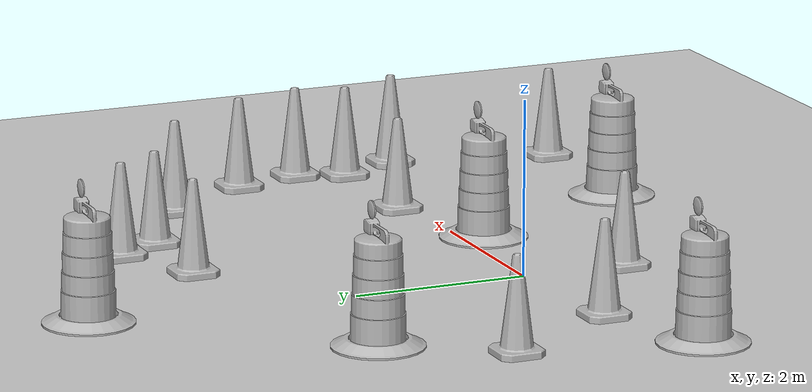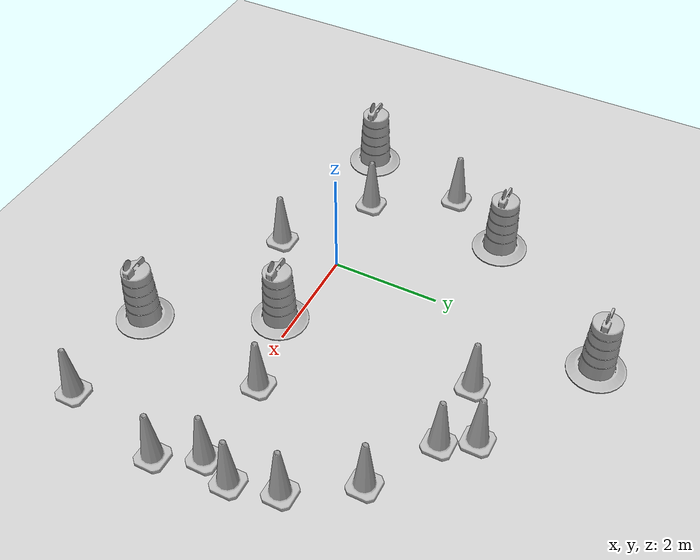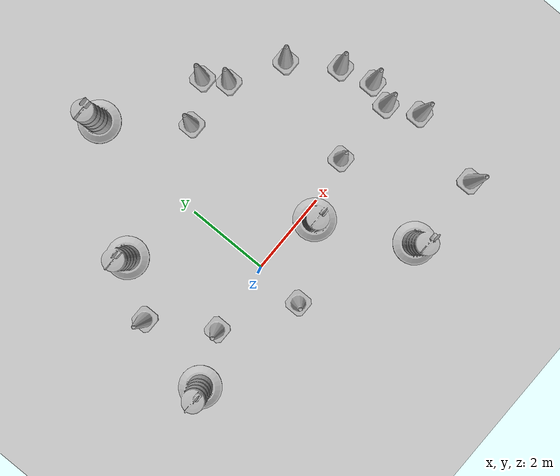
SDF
<sdf version="1.7">
 <world name="default">
  <light name="sun" type="directional">
   <pose>0 0 10 0 -0 0</pose>
   <diffuse>0.8 0.8 0.8 1</diffuse>
   <specular>0.2 0.2 0.2 1</specular>
   <attenuation>
    <range>1000</range>
    <constant>0.9</constant>
    <linear>0.01</linear>
    <quadratic>0.001</quadratic>
   </attenuation>
   <direction>-0.5 0.1 -0.9</direction>
   <spot><inner_angle>0</inner_angle><outer_angle>0</outer_angle><falloff>0</falloff></spot>
  </light>
  <model name="ground_plane">
   <static>1</static>
   <link name="link">
    <collision name="collision">
     <geometry><plane><normal>0 0 1</normal><size>100 100</size></plane></geometry>
     <surface><friction><ode><mu>100</mu><mu2>50</mu2></ode></friction></surface>
    </collision>
    <visual name="visual">
     <cast_shadows>0</cast_shadows>
     <geometry><plane><normal>0 0 1</normal><size>100 100</size></plane></geometry>
     <material>
      <script><uri>file://media/materials/scripts/gazebo.material</uri><name>Gazebo/Grey</name></script>
     </material>
    </visual>
   </link>
  </model>
  <gravity>0 0 -9.8</gravity>
  <magnetic_field>6e-06 2.3e-05 -4.2e-05</magnetic_field>
  <atmosphere type="adiabatic"/>
  <physics type="ode">
   <max_step_size>0.001</max_step_size>
   <real_time_factor>1</real_time_factor>
   <real_time_update_rate>1000</real_time_update_rate>
  </physics>
  <scene><ambient>0.4 0.4 0.4 1</ambient><background>0.7 0.7 0.7 1</background><shadows>1</shadows></scene>
  <audio><device>default</device></audio>
  <spherical_coordinates>
   <surface_model>EARTH_WGS84</surface_model>
   <latitude_deg>0</latitude_deg>
   <longitude_deg>0</longitude_deg>
   <elevation>0</elevation>
   <heading_deg>0</heading_deg>
  </spherical_coordinates>
  <model name="Construction Barrel">
   <link name="link">
    <inertial>
     <pose>0 0 0.4 0 -0 0</pose>
     <mass>500</mass>
     <inertia><ixx>51.2096</ixx><iyy>51.2096</iyy><izz>25</izz><ixy>0</ixy><ixz>0</ixz><iyz>0</iyz></inertia>
    </inertial>
    <collision name="collision">
     <geometry><mesh><uri>model://construction_barrel/meshes/construction_barrel.dae</uri></mesh></geometry>
    </collision>
    <visual name="visual">
     <geometry><mesh><uri>model://construction_barrel/meshes/construction_barrel.dae</uri></mesh></geometry>
    </visual>
   </link>
   <pose>-1.8027 2.50769 -3e-06 -0 -1.2e-05 -2.5e-05</pose>
  </model>
  <model name="Construction Barrel_0">
   <link name="link">
    <inertial>
     <pose>0 0 0.4 0 -0 0</pose>
     <mass>500</mass>
     <inertia><ixx>51.2096</ixx><iyy>51.2096</iyy><izz>25</izz><ixy>0</ixy><ixz>0</ixz><iyz>0</iyz></inertia>
    </inertial>
    <collision name="collision">
     <geometry><mesh><uri>model://construction_barrel/meshes/construction_barrel.dae</uri></mesh></geometry>
    </collision>
    <visual name="visual">
     <geometry><mesh><uri>model://construction_barrel/meshes/construction_barrel.dae</uri></mesh></geometry>
    </visual>
   </link>
   <pose>2.69583 -2.3754 -3e-06 -0 -1.2e-05 -2.6e-05</pose>
  </model>
  <model name="Construction Cone">
   <link name="link">
    <collision name="collision">
     <geometry>
      <mesh><scale>10 10 10</scale><uri>model://construction_cone/meshes/construction_cone.dae</uri></mesh>
     </geometry>
    </collision>
    <visual name="visual">
     <geometry>
      <mesh><scale>10 10 10</scale><uri>model://construction_cone/meshes/construction_cone.dae</uri></mesh>
     </geometry>
    </visual>
    <inertial>
     <inertia><ixx>1</ixx><ixy>0</ixy><ixz>0</ixz><iyy>1</iyy><iyz>0</iyz><izz>1</izz></inertia>
     <mass>1</mass>
    </inertial>
   </link>
   <pose>5.04948 -0.561381 -0 0 -0 0</pose>
  </model>
  <model name="Construction Cone_0">
   <link name="link">
    <collision name="collision">
     <geometry>
      <mesh><scale>10 10 10</scale><uri>model://construction_cone/meshes/construction_cone.dae</uri></mesh>
     </geometry>
    </collision>
    <visual name="visual">
     <geometry>
      <mesh><scale>10 10 10</scale><uri>model://construction_cone/meshes/construction_cone.dae</uri></mesh>
     </geometry>
    </visual>
    <inertial>
     <inertia><ixx>1</ixx><ixy>0</ixy><ixz>0</ixz><iyy>1</iyy><iyz>0</iyz><izz>1</izz></inertia>
     <mass>1</mass>
    </inertial>
   </link>
   <pose>4.71102 0.17231 0 -0 -0 -0</pose>
  </model>
  <model name="Construction Cone_1">
   <link name="link">
    <collision name="collision">
     <geometry>
      <mesh><scale>10 10 10</scale><uri>model://construction_cone/meshes/construction_cone.dae</uri></mesh>
     </geometry>
    </collision>
    <visual name="visual">
     <geometry>
      <mesh><scale>10 10 10</scale><uri>model://construction_cone/meshes/construction_cone.dae</uri></mesh>
     </geometry>
    </visual>
    <inertial>
     <inertia><ixx>1</ixx><ixy>0</ixy><ixz>0</ixz><iyy>1</iyy><iyz>0</iyz><izz>1</izz></inertia>
     <mass>1</mass>
    </inertial>
   </link>
   <pose>4.91195 0.729709 -0 0 -1e-06 0</pose>
  </model>
  <model name="Construction Cone_2">
   <link name="link">
    <collision name="collision">
     <geometry>
      <mesh><scale>10 10 10</scale><uri>model://construction_cone/meshes/construction_cone.dae</uri></mesh>
     </geometry>
    </collision>
    <visual name="visual">
     <geometry>
      <mesh><scale>10 10 10</scale><uri>model://construction_cone/meshes/construction_cone.dae</uri></mesh>
     </geometry>
    </visual>
    <inertial>
     <inertia><ixx>1</ixx><ixy>0</ixy><ixz>0</ixz><iyy>1</iyy><iyz>0</iyz><izz>1</izz></inertia>
     <mass>1</mass>
    </inertial>
   </link>
   <pose>4.70737 1.52455 -0 0 -0 0</pose>
  </model>
  <model name="Construction Cone_3">
   <link name="link">
    <collision name="collision">
     <geometry>
      <mesh><scale>10 10 10</scale><uri>model://construction_cone/meshes/construction_cone.dae</uri></mesh>
     </geometry>
    </collision>
    <visual name="visual">
     <geometry>
      <mesh><scale>10 10 10</scale><uri>model://construction_cone/meshes/construction_cone.dae</uri></mesh>
     </geometry>
    </visual>
    <inertial>
     <inertia><ixx>1</ixx><ixy>0</ixy><ixz>0</ixz><iyy>1</iyy><iyz>0</iyz><izz>1</izz></inertia>
     <mass>1</mass>
    </inertial>
   </link>
   <pose>2.80647 3.28825 -0 0 -1e-06 0</pose>
  </model>
  <model name="Construction Cone_4">
   <link name="link">
    <collision name="collision">
     <geometry>
      <mesh><scale>10 10 10</scale><uri>model://construction_cone/meshes/construction_cone.dae</uri></mesh>
     </geometry>
    </collision>
    <visual name="visual">
     <geometry>
      <mesh><scale>10 10 10</scale><uri>model://construction_cone/meshes/construction_cone.dae</uri></mesh>
     </geometry>
    </visual>
    <inertial>
     <inertia><ixx>1</ixx><ixy>0</ixy><ixz>0</ixz><iyy>1</iyy><iyz>0</iyz><izz>1</izz></inertia>
     <mass>1</mass>
    </inertial>
   </link>
   <pose>4.00741 2.58993 -0 0 -0 0</pose>
  </model>
  <model name="Construction Cone_5">
   <link name="link">
    <collision name="collision">
     <geometry>
      <mesh><scale>10 10 10</scale><uri>model://construction_cone/meshes/construction_cone.dae</uri></mesh>
     </geometry>
    </collision>
    <visual name="visual">
     <geometry>
      <mesh><scale>10 10 10</scale><uri>model://construction_cone/meshes/construction_cone.dae</uri></mesh>
     </geometry>
    </visual>
    <inertial>
     <inertia><ixx>1</ixx><ixy>0</ixy><ixz>0</ixz><iyy>1</iyy><iyz>0</iyz><izz>1</izz></inertia>
     <mass>1</mass>
    </inertial>
   </link>
   <pose>2.47894 3.80997 -0 0 -1e-06 0</pose>
  </model>
  <model name="Construction Cone_6">
   <link name="link">
    <collision name="collision">
     <geometry>
      <mesh><scale>10 10 10</scale><uri>model://construction_cone/meshes/construction_cone.dae</uri></mesh>
     </geometry>
    </collision>
    <visual name="visual">
     <geometry>
      <mesh><scale>10 10 10</scale><uri>model://construction_cone/meshes/construction_cone.dae</uri></mesh>
     </geometry>
    </visual>
    <inertial>
     <inertia><ixx>1</ixx><ixy>0</ixy><ixz>0</ixz><iyy>1</iyy><iyz>0</iyz><izz>1</izz></inertia>
     <mass>1</mass>
    </inertial>
   </link>
   <pose>1.50798 3.321 -1e-06 1e-06 -2e-06 -0</pose>
  </model>
  <model name="Construction Barrel_1">
   <link name="link">
    <inertial>
     <pose>0 0 0.4 0 -0 0</pose>
     <mass>500</mass>
     <inertia><ixx>51.2096</ixx><iyy>51.2096</iyy><izz>25</izz><ixy>0</ixy><ixz>0</ixz><iyz>0</iyz></inertia>
    </inertial>
    <collision name="collision">
     <geometry><mesh><uri>model://construction_barrel/meshes/construction_barrel.dae</uri></mesh></geometry>
    </collision>
    <visual name="visual">
     <geometry><mesh><uri>model://construction_barrel/meshes/construction_barrel.dae</uri></mesh></geometry>
    </visual>
   </link>
   <pose>1.63546 -0.2529 0 0 0 -1.9e-05</pose>
  </model>
  <model name="Construction Barrel_2">
   <link name="link">
    <inertial>
     <pose>0 0 0.4 0 -0 0</pose>
     <mass>500</mass>
     <inertia><ixx>51.2096</ixx><iyy>51.2096</iyy><izz>25</izz><ixy>0</ixy><ixz>0</ixz><iyz>0</iyz></inertia>
    </inertial>
    <collision name="collision">
     <geometry><mesh><uri>model://construction_barrel/meshes/construction_barrel.dae</uri></mesh></geometry>
    </collision>
    <visual name="visual">
     <geometry><mesh><uri>model://construction_barrel/meshes/construction_barrel.dae</uri></mesh></geometry>
    </visual>
   </link>
   <pose>0.20248 5.01657 -1e-06 4e-06 -2e-06 -2.1e-05</pose>
  </model>
  <model name="Construction Barrel_3">
   <link name="link">
    <inertial>
     <pose>0 0 0.4 0 -0 0</pose>
     <mass>500</mass>
     <inertia><ixx>51.2096</ixx><iyy>51.2096</iyy><izz>25</izz><ixy>0</ixy><ixz>0</ixz><iyz>0</iyz></inertia>
    </inertial>
    <collision name="collision">
     <geometry><mesh><uri>model://construction_barrel/meshes/construction_barrel.dae</uri></mesh></geometry>
    </collision>
    <visual name="visual">
     <geometry><mesh><uri>model://construction_barrel/meshes/construction_barrel.dae</uri></mesh></geometry>
    </visual>
   </link>
   <pose>-3.02722 -0.693707 0 0 0 -1.8e-05</pose>
  </model>
  <model name="Construction Cone_7">
   <link name="link">
    <collision name="collision">
     <geometry>
      <mesh><scale>10 10 10</scale><uri>model://construction_cone/meshes/construction_cone.dae</uri></mesh>
     </geometry>
    </collision>
    <visual name="visual">
     <geometry>
      <mesh><scale>10 10 10</scale><uri>model://construction_cone/meshes/construction_cone.dae</uri></mesh>
     </geometry>
    </visual>
    <inertial>
     <inertia><ixx>1</ixx><ixy>0</ixy><ixz>0</ixz><iyy>1</iyy><iyz>0</iyz><izz>1</izz></inertia>
     <mass>1</mass>
    </inertial>
   </link>
   <pose>-2.63078 1.28533 -1e-06 2e-06 2e-06 0</pose>
  </model>
  <model name="Construction Cone_8">
   <link name="link">
    <collision name="collision">
     <geometry>
      <mesh><scale>10 10 10</scale><uri>model://construction_cone/meshes/construction_cone.dae</uri></mesh>
     </geometry>
    </collision>
    <visual name="visual">
     <geometry>
      <mesh><scale>10 10 10</scale><uri>model://construction_cone/meshes/construction_cone.dae</uri></mesh>
     </geometry>
    </visual>
    <inertial>
     <inertia><ixx>1</ixx><ixy>0</ixy><ixz>0</ixz><iyy>1</iyy><iyz>0</iyz><izz>1</izz></inertia>
     <mass>1</mass>
    </inertial>
   </link>
   <pose>-1.7496 -0.148497 -1e-06 1e-06 -2e-06 -0</pose>
  </model>
  <model name="Construction Cone_10">
   <link name="link">
    <collision name="collision">
     <geometry>
      <mesh><scale>10 10 10</scale><uri>model://construction_cone/meshes/construction_cone.dae</uri></mesh>
     </geometry>
    </collision>
    <visual name="visual">
     <geometry>
      <mesh><scale>10 10 10</scale><uri>model://construction_cone/meshes/construction_cone.dae</uri></mesh>
     </geometry>
    </visual>
    <inertial>
     <inertia><ixx>1</ixx><ixy>0</ixy><ixz>0</ixz><iyy>1</iyy><iyz>0</iyz><izz>1</izz></inertia>
     <mass>1</mass>
    </inertial>
   </link>
   <pose>3.0996 0.180991 -0 0 -1e-06 0</pose>
  </model>
  <model name="Construction Cone_11">
   <link name="link">
    <collision name="collision">
     <geometry>
      <mesh><scale>10 10 10</scale><uri>model://construction_cone/meshes/construction_cone.dae</uri></mesh>
     </geometry>
    </collision>
    <visual name="visual">
     <geometry>
      <mesh><scale>10 10 10</scale><uri>model://construction_cone/meshes/construction_cone.dae</uri></mesh>
     </geometry>
    </visual>
    <inertial>
     <inertia><ixx>1</ixx><ixy>0</ixy><ixz>0</ixz><iyy>1</iyy><iyz>0</iyz><izz>1</izz></inertia>
     <mass>1</mass>
    </inertial>
   </link>
   <pose>4.60428 -2.4402 -1e-05 0 -0 0</pose>
  </model>
  <model name="Construction Cone_9">
   <link name="link">
    <collision name="collision">
     <geometry>
      <mesh><scale>10 10 10</scale><uri>model://construction_cone/meshes/construction_cone.dae</uri></mesh>
     </geometry>
    </collision>
    <visual name="visual">
     <geometry>
      <mesh><scale>10 10 10</scale><uri>model://construction_cone/meshes/construction_cone.dae</uri></mesh>
     </geometry>
    </visual>
    <inertial>
     <inertia><ixx>1</ixx><ixy>0</ixy><ixz>0</ixz><iyy>1</iyy><iyz>0</iyz><izz>1</izz></inertia>
     <mass>1</mass>
    </inertial>
   </link>
   <pose>-0.082619 -1.19151 -0 0 -1e-06 0</pose>
  </model>
 </world>
</sdf>
